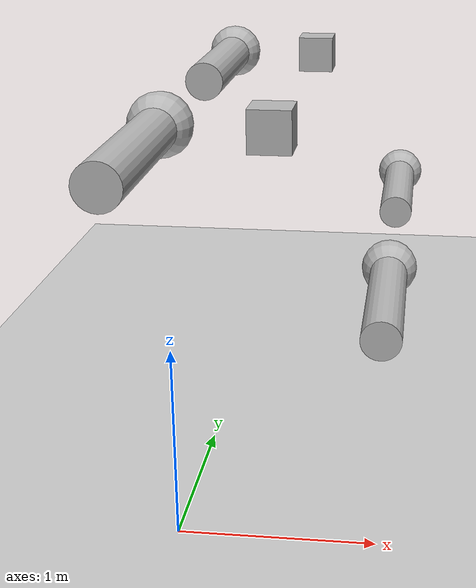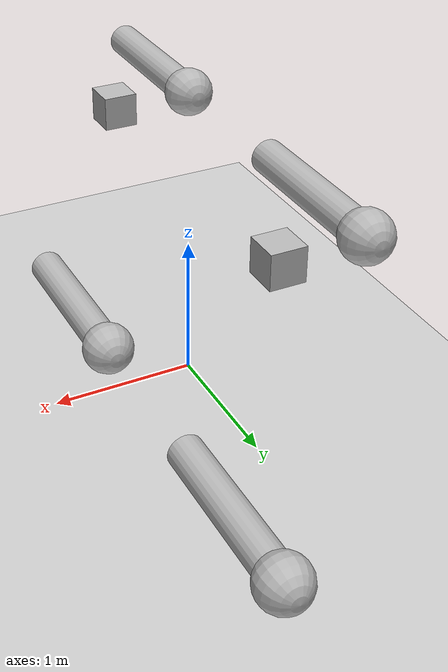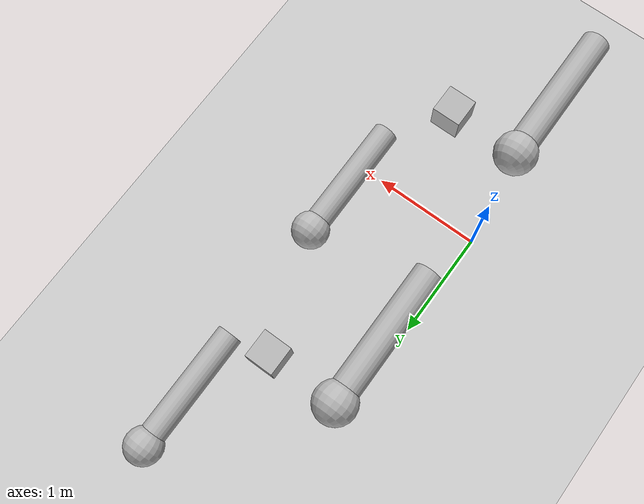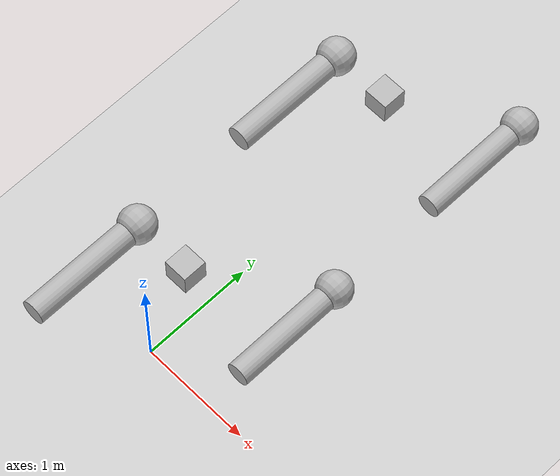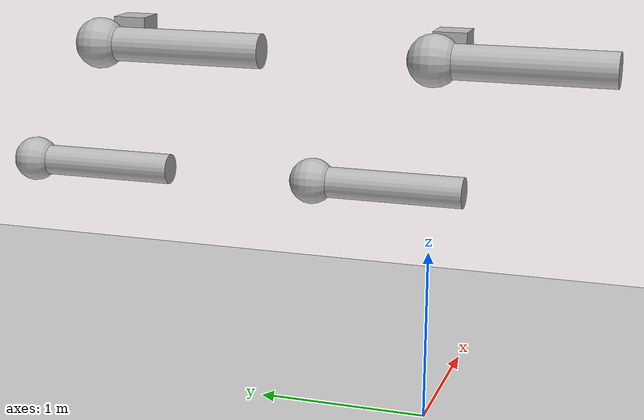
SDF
<?xml version="1.0" ?>
<sdf version="1.5">
  <world name="default">
    <!-- A global light source -->
    <include>
      <uri>model://sun</uri>
    </include>
    <!-- A ground plane -->
    <include>
      <uri>model://ground_plane</uri>
    </include>
    <physics type="ode">
      <gravity>0.000000 0.000000 0.00000</gravity>
      <max_step_size>0.000100</max_step_size>
      <ode>
        <solver>
          <type>quick</type>
          <iters>200</iters>
          <precon_iters>0</precon_iters>
          <sor>1.000000</sor>
        </solver>
        <constraints>
          <cfm>0.000000</cfm>
          <erp>1.000000</erp>
          <contact_max_correcting_vel>0.000000</contact_max_correcting_vel>
          <contact_surface_layer>0.000000</contact_surface_layer>
        </constraints>
      </ode>
      <real_time_update_rate>0.000000</real_time_update_rate>
    </physics>
    <model name="model_1">
      <pose>0.000000 0.000000 2.100000 -1.57079 -0.000000 0.000000</pose>
      <link name="link_1">
        <pose>0.000000 0.000000 0.000000 0.000000 -0.000000 0.000000</pose>
        <inertial>
          <pose>0.000000 0.000000 -0.500000 0.000000 -0.000000 0.000000</pose>
          <inertia>
            <ixx>1.000000</ixx>
            <ixy>0.000000</ixy>
            <ixz>0.000000</ixz>
            <iyy>1.000000</iyy>
            <iyz>0.000000</iyz>
            <izz>1.000000</izz>
          </inertia>
          <mass>10.000000</mass>
        </inertial>
        <visual name="visual_sphere">
          <pose>0.000000 0.000000 0 0.000000 -0.000000 0.000000</pose>
          <geometry>
            <sphere>
              <radius>0.150000</radius>
            </sphere>
          </geometry>
        </visual>
        <visual name="visual_cylinder">
          <pose>0.000000 0.000000 -0.500000 0.000000 -0.000000 0.000000</pose>
          <geometry>
            <cylinder>
              <radius>0.100000</radius>
              <length>1.000000</length>
            </cylinder>
          </geometry>
          <material>
            <script>Gazebo/Green</script>
          </material>
          <cast_shadows>1</cast_shadows>
          <laser_retro>100.000000</laser_retro>
          <transparency>0.000000</transparency>
        </visual>
        <collision name="collision_cylinder">
          <pose>0.000000 0.000000 -0.500000 0.000000 -0.000000 0.000000</pose>
          <max_contacts>250</max_contacts>
          <geometry>
            <cylinder>
              <radius>0.100000</radius>
              <length>1.000000</length>
            </cylinder>
          </geometry>
        </collision>
        <gravity>1</gravity>
        <self_collide>1</self_collide>
        <kinematic>0</kinematic>
      </link>
      <link name="link_2">
        <pose>0.500000 0.000000 0.000000 0.000000 -0.000000 0.000000</pose>
        <inertial>
          <pose>0.000000 0.000000 -0.500000 0.000000 -0.000000 0.000000</pose>
          <inertia>
            <ixx>1.000000</ixx>
            <ixy>0.000000</ixy>
            <ixz>0.000000</ixz>
            <iyy>1.000000</iyy>
            <iyz>0.000000</iyz>
            <izz>1.000000</izz>
          </inertia>
          <mass>10.000000</mass>
        </inertial>
        <visual name="visual_cylinder">
          <pose>0.000000 0.000000 0.000000 0.000000 -0.000000 0.000000</pose>
          <geometry>
            <box>
              <size>0.2 0.2 0.2</size>
            </box>
          </geometry>
          <material>
            <script>Gazebo/Green</script>
          </material>
          <cast_shadows>1</cast_shadows>
          <laser_retro>100.000000</laser_retro>
          <transparency>0.000000</transparency>
        </visual>
        <collision name="collision_cylinder">
          <pose>0.000000 0.000000 0.000000 0.000000 -0.000000 0.000000</pose>
          <max_contacts>250</max_contacts>
          <geometry>
            <box>
              <size>0.2 0.2 0.2</size>
            </box>
          </geometry>
        </collision>
        <gravity>1</gravity>
        <self_collide>1</self_collide>
        <kinematic>0</kinematic>
      </link>
      <link name="link_3">
        <pose>1.000000 1.000000 1.000000 0.000000 -0.000000 0.000000</pose>
        <inertial>
          <pose>0.000000 0.000000 -0.500000 0.000000 -0.000000 0.000000</pose>
          <inertia>
            <ixx>1.000000</ixx>
            <ixy>0.000000</ixy>
            <ixz>0.000000</ixz>
            <iyy>1.000000</iyy>
            <iyz>0.000000</iyz>
            <izz>1.000000</izz>
          </inertia>
          <mass>10.000000</mass>
        </inertial>
        <visual name="visual_sphere">
          <pose>0.000000 0.000000 0 0.000000 -0.000000 0.000000</pose>
          <geometry>
            <sphere>
              <radius>0.150000</radius>
            </sphere>
          </geometry>
        </visual>
        <visual name="visual_cylinder">
          <pose>0.000000 0.000000 -0.500000 0.000000 -0.000000 0.000000</pose>
          <geometry>
            <cylinder>
              <radius>0.100000</radius>
              <length>1.000000</length>
            </cylinder>
          </geometry>
          <material>
            <script>Gazebo/Green</script>
          </material>
          <cast_shadows>1</cast_shadows>
          <laser_retro>100.000000</laser_retro>
          <transparency>0.000000</transparency>
        </visual>
        <collision name="collision_cylinder">
          <pose>0.000000 0.000000 -0.500000 0.000000 -0.000000 0.000000</pose>
          <max_contacts>250</max_contacts>
          <geometry>
            <cylinder>
              <radius>0.100000</radius>
              <length>1.000000</length>
            </cylinder>
          </geometry>
        </collision>
        <gravity>1</gravity>
        <self_collide>1</self_collide>
        <kinematic>0</kinematic>
      </link>
      <joint name="joint_02" type="revolute">
        <parent>world</parent>
        <child>link_2</child>
        <axis>
          <xyz>0.000000 0.000000 1.000000</xyz>
          <limit>
            <upper>-1000.0</upper>
            <lower>1000.0</lower>
          </limit>
          <dynamics>
            <damping>1</damping>
          </dynamics>
          <use_parent_model_frame>true</use_parent_model_frame>
        </axis>
      </joint>
      <joint name="joint_12" type="revolute">
        <parent>link_2</parent>
        <child>link_1</child>
        <axis>
          <xyz>1.000000 0.000000 0.000000</xyz>
          <use_parent_model_frame>true</use_parent_model_frame>
          <dynamics>
            <damping>1</damping>
          </dynamics>
        </axis>
      </joint>
      <joint name="joint_23" type="revolute">
        <parent>link_2</parent>
        <child>link_3</child>
        <axis>
          <xyz>1.000000 0.000000 0.000000</xyz>
          <use_parent_model_frame>true</use_parent_model_frame>
          <dynamics>
            <damping>1</damping>
          </dynamics>
        </axis>
      </joint>
      <joint name="joint_13" type="gearbox">
        <parent>link_1</parent>
        <child>link_3</child>
        <gearbox_ratio>-1.5</gearbox_ratio>
        <gearbox_reference_body>link_2</gearbox_reference_body>
      </joint>
      <static>0</static>
    </model>
    <model name="model_2">
      <pose>0.000000 2.000000 2.100000 -1.57079 -0.000000 0.000000</pose>
      <link name="link_1">
        <pose>0.000000 0.000000 0.000000 0.000000 -0.000000 0.000000</pose>
        <inertial>
          <pose>0.000000 0.000000 -0.500000 0.000000 -0.000000 0.000000</pose>
          <inertia>
            <ixx>1.000000</ixx>
            <ixy>0.000000</ixy>
            <ixz>0.000000</ixz>
            <iyy>1.000000</iyy>
            <iyz>0.000000</iyz>
            <izz>1.000000</izz>
          </inertia>
          <mass>10.000000</mass>
        </inertial>
        <visual name="visual_sphere">
          <pose>0.000000 0.000000 0 0.000000 -0.000000 0.000000</pose>
          <geometry>
            <sphere>
              <radius>0.150000</radius>
            </sphere>
          </geometry>
        </visual>
        <visual name="visual_cylinder">
          <pose>0.000000 0.000000 -0.500000 0.000000 -0.000000 0.000000</pose>
          <geometry>
            <cylinder>
              <radius>0.100000</radius>
              <length>1.000000</length>
            </cylinder>
          </geometry>
          <material>
            <script>Gazebo/Green</script>
          </material>
          <cast_shadows>1</cast_shadows>
          <laser_retro>100.000000</laser_retro>
          <transparency>0.000000</transparency>
        </visual>
        <collision name="collision_cylinder">
          <pose>0.000000 0.000000 -0.500000 0.000000 -0.000000 0.000000</pose>
          <max_contacts>250</max_contacts>
          <geometry>
            <cylinder>
              <radius>0.100000</radius>
              <length>1.000000</length>
            </cylinder>
          </geometry>
        </collision>
        <gravity>1</gravity>
        <self_collide>1</self_collide>
        <kinematic>0</kinematic>
      </link>
      <link name="link_2">
        <pose>0.500000 0.000000 0.000000 0.000000 -0.000000 0.000000</pose>
        <inertial>
          <pose>0.000000 0.000000 -0.500000 0.000000 -0.000000 0.000000</pose>
          <inertia>
            <ixx>1.000000</ixx>
            <ixy>0.000000</ixy>
            <ixz>0.000000</ixz>
            <iyy>1.000000</iyy>
            <iyz>0.000000</iyz>
            <izz>1.000000</izz>
          </inertia>
          <mass>10.000000</mass>
        </inertial>
        <visual name="visual_cylinder">
          <pose>0.000000 0.000000 0.000000 0.000000 -0.000000 0.000000</pose>
          <geometry>
            <box>
              <size>0.2 0.2 0.2</size>
            </box>
          </geometry>
          <material>
            <script>Gazebo/Green</script>
          </material>
          <cast_shadows>1</cast_shadows>
          <laser_retro>100.000000</laser_retro>
          <transparency>0.000000</transparency>
        </visual>
        <collision name="collision_cylinder">
          <pose>0.000000 0.000000 0.000000 0.000000 -0.000000 0.000000</pose>
          <max_contacts>250</max_contacts>
          <geometry>
            <box>
              <size>0.2 0.2 0.2</size>
            </box>
          </geometry>
        </collision>
        <gravity>1</gravity>
        <self_collide>1</self_collide>
        <kinematic>0</kinematic>
      </link>
      <link name="link_3">
        <pose>1.000000 1.000000 1.000000 0.000000 -0.000000 0.000000</pose>
        <inertial>
          <pose>0.000000 0.000000 -0.500000 0.000000 -0.000000 0.000000</pose>
          <inertia>
            <ixx>1.000000</ixx>
            <ixy>0.000000</ixy>
            <ixz>0.000000</ixz>
            <iyy>1.000000</iyy>
            <iyz>0.000000</iyz>
            <izz>1.000000</izz>
          </inertia>
          <mass>10.000000</mass>
        </inertial>
        <visual name="visual_sphere">
          <pose>0.000000 0.000000 0 0.000000 -0.000000 0.000000</pose>
          <geometry>
            <sphere>
              <radius>0.150000</radius>
            </sphere>
          </geometry>
        </visual>
        <visual name="visual_cylinder">
          <pose>0.000000 0.000000 -0.500000 0.000000 -0.000000 0.000000</pose>
          <geometry>
            <cylinder>
              <radius>0.100000</radius>
              <length>1.000000</length>
            </cylinder>
          </geometry>
          <material>
            <script>Gazebo/Green</script>
          </material>
          <cast_shadows>1</cast_shadows>
          <laser_retro>100.000000</laser_retro>
          <transparency>0.000000</transparency>
        </visual>
        <collision name="collision_cylinder">
          <pose>0.000000 0.000000 -0.500000 0.000000 -0.000000 0.000000</pose>
          <max_contacts>250</max_contacts>
          <geometry>
            <cylinder>
              <radius>0.100000</radius>
              <length>1.000000</length>
            </cylinder>
          </geometry>
        </collision>
        <gravity>1</gravity>
        <self_collide>1</self_collide>
        <kinematic>0</kinematic>
      </link>
      <joint name="joint_02" type="revolute">
        <parent>world</parent>
        <child>link_2</child>
        <axis>
          <xyz>1.000000 0.000000 0.000000</xyz>
          <limit>
            <upper>-1000.0</upper>
            <lower>1000.0</lower>
          </limit>
          <dynamics>
            <damping>1</damping>
          </dynamics>
          <use_parent_model_frame>true</use_parent_model_frame>
        </axis>
      </joint>
      <joint name="joint_12" type="revolute">
        <parent>link_1</parent>
        <child>link_2</child>
        <axis>
          <xyz>1.000000 0.000000 0.000000</xyz>
          <use_parent_model_frame>true</use_parent_model_frame>
          <dynamics>
            <damping>1</damping>
          </dynamics>
        </axis>
      </joint>
      <joint name="joint_23" type="revolute">
        <parent>link_2</parent>
        <child>link_3</child>
        <axis>
          <xyz>1.000000 0.000000 0.000000</xyz>
          <use_parent_model_frame>true</use_parent_model_frame>
          <dynamics>
            <damping>1</damping>
          </dynamics>
        </axis>
      </joint>
      <joint name="joint_13" type="gearbox">
        <parent>link_1</parent>
        <child>link_3</child>
        <gearbox_ratio>1.5</gearbox_ratio>
        <gearbox_reference_body>link_2</gearbox_reference_body>
      </joint>
      <static>0</static>
    </model>
  </world>
</sdf>
